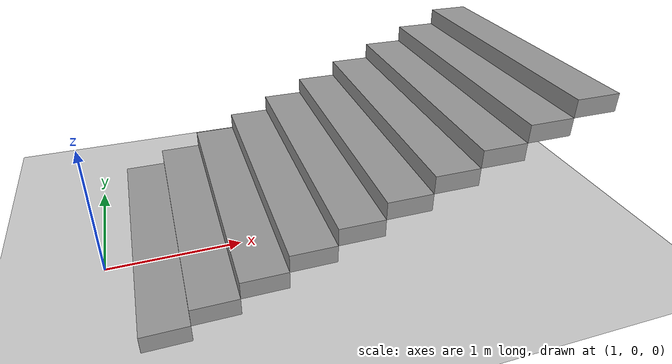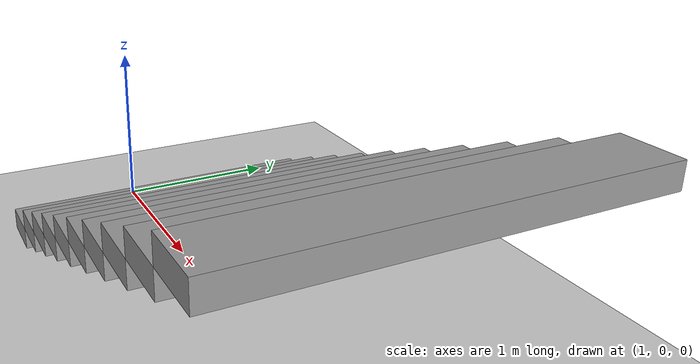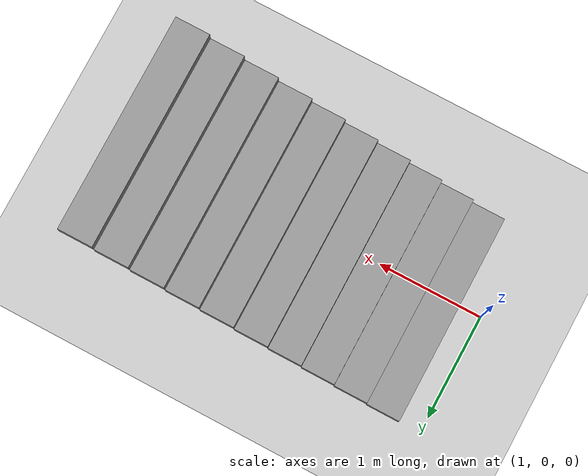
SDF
<sdf version="1.7">
 <world name="default">
  <light name="sun" type="directional">
   <pose>0 0 10 0 -0 0</pose>
   <diffuse>0.8 0.8 0.8 1</diffuse>
   <specular>0.2 0.2 0.2 1</specular>
   <attenuation>
    <range>1000</range>
    <constant>0.9</constant>
    <linear>0.01</linear>
    <quadratic>0.001</quadratic>
   </attenuation>
   <direction>-0.5 0.1 -0.9</direction>
   <spot><inner_angle>0</inner_angle><outer_angle>0</outer_angle><falloff>0</falloff></spot>
  </light>
  <model name="ground_plane">
   <static>1</static>
   <link name="link">
    <collision name="collision">
     <geometry><plane><normal>0 0 1</normal><size>100 100</size></plane></geometry>
     <surface>
      <contact><collide_bitmask>65535</collide_bitmask></contact>
      <friction><ode><mu>100</mu><mu2>50</mu2></ode></friction>
     </surface>
    </collision>
    <visual name="visual">
     <cast_shadows>0</cast_shadows>
     <geometry><plane><normal>0 0 1</normal><size>100 100</size></plane></geometry>
     <material>
      <script><uri>file://media/materials/scripts/gazebo.material</uri><name>Gazebo/Grey</name></script>
     </material>
    </visual>
   </link>
  </model>
  <gravity>0 0 -9.8</gravity>
  <magnetic_field>6e-06 2.3e-05 -4.2e-05</magnetic_field>
  <atmosphere type="adiabatic"/>
  <physics type="ode">
   <max_step_size>0.001</max_step_size>
   <real_time_factor>1</real_time_factor>
   <real_time_update_rate>1000</real_time_update_rate>
  </physics>
  <scene><ambient>0.4 0.4 0.4 1</ambient><background>0.7 0.7 0.7 1</background><shadows>1</shadows></scene>
  <spherical_coordinates>
   <surface_model>EARTH_WGS84</surface_model>
   <latitude_deg>0</latitude_deg>
   <longitude_deg>0</longitude_deg>
   <elevation>0</elevation>
   <heading_deg>0</heading_deg>
  </spherical_coordinates>
  <model name="stair_target">
   <pose>2.20553 0.149692 0 0 -0 0</pose>
   <link name="Stairs_3">
    <visual name="Stairs_3_Visual_0">
     <pose>-0.834475 -0 0.065 0 -0 1.5708</pose>
     <geometry><box><size>2 0.32 0.13</size></box></geometry>
     <material>
      <script><uri>file://media/materials/scripts/gazebo.material</uri><name>Gazebo/Grey</name></script>
      <ambient>1 1 1 1</ambient>
     </material>
     <meta><layer>0</layer></meta>
    </visual>
    <collision name="Stairs_3_Collision_0">
     <geometry><box><size>2 0.32 0.13</size></box></geometry>
     <pose>-0.834475 -0 0.065 0 -0 1.5708</pose>
    </collision>
    <visual name="Stairs_3_Visual_1">
     <pose>-0.514475 -0 0.195 0 -0 1.5708</pose>
     <geometry><box><size>2 0.32 0.13</size></box></geometry>
     <material>
      <script><uri>file://media/materials/scripts/gazebo.material</uri><name>Gazebo/Grey</name></script>
      <ambient>1 1 1 1</ambient>
     </material>
     <meta><layer>0</layer></meta>
    </visual>
    <collision name="Stairs_3_Collision_1">
     <geometry><box><size>2 0.32 0.13</size></box></geometry>
     <pose>-0.514475 -0 0.195 0 -0 1.5708</pose>
    </collision>
    <visual name="Stairs_3_Visual_2">
     <pose>-0.194474 -0 0.325 0 -0 1.5708</pose>
     <geometry><box><size>2 0.32 0.13</size></box></geometry>
     <material>
      <script><uri>file://media/materials/scripts/gazebo.material</uri><name>Gazebo/Grey</name></script>
      <ambient>1 1 1 1</ambient>
     </material>
     <meta><layer>0</layer></meta>
    </visual>
    <collision name="Stairs_3_Collision_2">
     <geometry><box><size>2 0.32 0.13</size></box></geometry>
     <pose>-0.194474 -0 0.325 0 -0 1.5708</pose>
    </collision>
    <visual name="Stairs_3_Visual_3">
     <pose>0.125525 -0 0.455 0 -0 1.5708</pose>
     <geometry><box><size>2 0.32 0.13</size></box></geometry>
     <material>
      <script><uri>file://media/materials/scripts/gazebo.material</uri><name>Gazebo/Grey</name></script>
      <ambient>1 1 1 1</ambient>
     </material>
     <meta><layer>0</layer></meta>
    </visual>
    <collision name="Stairs_3_Collision_3">
     <geometry><box><size>2 0.32 0.13</size></box></geometry>
     <pose>0.125525 -0 0.455 0 -0 1.5708</pose>
    </collision>
    <visual name="Stairs_3_Visual_4">
     <pose>0.445525 -0 0.585 0 -0 1.5708</pose>
     <geometry><box><size>2 0.32 0.13</size></box></geometry>
     <material>
      <script><uri>file://media/materials/scripts/gazebo.material</uri><name>Gazebo/Grey</name></script>
      <ambient>1 1 1 1</ambient>
     </material>
     <meta><layer>0</layer></meta>
    </visual>
    <collision name="Stairs_3_Collision_4">
     <geometry><box><size>2 0.32 0.13</size></box></geometry>
     <pose>0.445525 -0 0.585 0 -0 1.5708</pose>
    </collision>
    <visual name="Stairs_3_Visual_5">
     <pose>0.765526 0 0.715 0 -0 1.5708</pose>
     <geometry><box><size>2 0.32 0.13</size></box></geometry>
     <material>
      <script><uri>file://media/materials/scripts/gazebo.material</uri><name>Gazebo/Grey</name></script>
      <ambient>1 1 1 1</ambient>
     </material>
     <meta><layer>0</layer></meta>
    </visual>
    <collision name="Stairs_3_Collision_5">
     <geometry><box><size>2 0.32 0.13</size></box></geometry>
     <pose>0.765526 0 0.715 0 -0 1.5708</pose>
    </collision>
    <visual name="Stairs_3_Visual_6">
     <pose>1.08553 0 0.845 0 -0 1.5708</pose>
     <geometry><box><size>2 0.32 0.13</size></box></geometry>
     <material>
      <script><uri>file://media/materials/scripts/gazebo.material</uri><name>Gazebo/Grey</name></script>
      <ambient>1 1 1 1</ambient>
     </material>
     <meta><layer>0</layer></meta>
    </visual>
    <collision name="Stairs_3_Collision_6">
     <geometry><box><size>2 0.32 0.13</size></box></geometry>
     <pose>1.08553 0 0.845 0 -0 1.5708</pose>
    </collision>
    <visual name="Stairs_3_Visual_7">
     <pose>1.40552 0 0.975 0 -0 1.5708</pose>
     <geometry><box><size>2 0.32 0.13</size></box></geometry>
     <material>
      <script><uri>file://media/materials/scripts/gazebo.material</uri><name>Gazebo/Grey</name></script>
      <ambient>1 1 1 1</ambient>
     </material>
     <meta><layer>0</layer></meta>
    </visual>
    <collision name="Stairs_3_Collision_7">
     <geometry><box><size>2 0.32 0.13</size></box></geometry>
     <pose>1.40552 0 0.975 0 -0 1.5708</pose>
    </collision>
    <visual name="Stairs_3_Visual_8">
     <pose>1.72553 0 1.105 0 -0 1.5708</pose>
     <geometry><box><size>2 0.32 0.13</size></box></geometry>
     <material>
      <script><uri>file://media/materials/scripts/gazebo.material</uri><name>Gazebo/Grey</name></script>
      <ambient>1 1 1 1</ambient>
     </material>
     <meta><layer>0</layer></meta>
    </visual>
    <collision name="Stairs_3_Collision_8">
     <geometry><box><size>2 0.32 0.13</size></box></geometry>
     <pose>1.72553 0 1.105 0 -0 1.5708</pose>
    </collision>
    <visual name="Stairs_3_Visual_9">
     <pose>2.04553 0 1.235 0 -0 1.5708</pose>
     <geometry><box><size>2 0.32 0.13</size></box></geometry>
     <material>
      <script><uri>file://media/materials/scripts/gazebo.material</uri><name>Gazebo/Grey</name></script>
      <ambient>1 1 1 1</ambient>
     </material>
     <meta><layer>0</layer></meta>
    </visual>
    <collision name="Stairs_3_Collision_9">
     <geometry><box><size>2 0.32 0.13</size></box></geometry>
     <pose>2.04553 0 1.235 0 -0 1.5708</pose>
    </collision>
   </link>
   <static>1</static>
  </model>
 </world>
</sdf>
